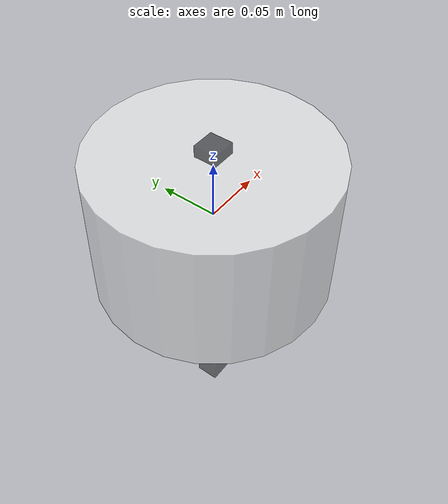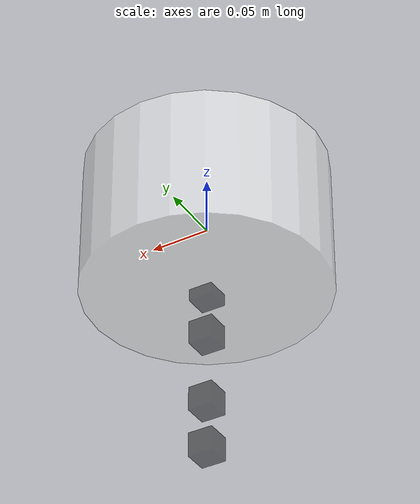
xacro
<?xml version="1.0"?>
<robot xmlns:xacro="http://www.ros.org/wiki/xacro" name="first_robot">
    <xacro:macro name="base_link" params="length radius">
        <link name="base_link">
            <!-- 部件的外观描述 -->
            <visual>
                <!-- 沿着自己几何中心的偏移和旋转量 -->
                <origin xyz="0.0 0.0 0.0" rpy="0.0 0.0 0.0"/>
                <!-- 几何形状 -->
                <geometry>
                    <!-- 圆柱体 radius 半径 0.10m 高度 length 0.12m -->
                    <cylinder radius="${radius}" length="${length}"/>
                </geometry>
                <!-- 材质颜色 -->
                <material name = "white">
                    <color rgba="1.0 1.0 1.0 0.5"/>
                </material>
            </visual>
        </link>
    </xacro:macro>

    <xacro:macro name="IMU_link" params="imu_name xyz">
        <link name="${imu_name}_link">
            <!-- 部件的外观描述 -->
            <visual>
                <!-- 沿着自己几何中心的偏移和旋转量 -->
                <origin xyz="${xyz}" rpy="0.0 0.0 0.0"/>
                <!-- 几何形状 -->
                <geometry>
                    <box size="0.02 0.02 0.02"/>
                </geometry>
                <!-- 材质颜色 -->
                <material name = "black">
                    <color rgba="0.0 0.0 0.0 0.5"/>
                </material>
            </visual>
        </link>

        <!-- 机器人的关节，用于组合机器人的部件 -->
        <joint name="${imu_name}_joint" type="fixed">
            <parent link="base_link"/>
            <child link="${imu_name}_link"/>
            <origin xyz="${xyz}" rpy="0.0 0.0 0.0"/>
        </joint>
    </xacro:macro>

    <xacro:base_link length="0.12" radius="0.1"/>
    <xacro:IMU_link imu_name="imu_up" xyz="0.0 0.0 0.03"/>
    <xacro:IMU_link imu_name="imu_down" xyz="0.0 0.0 -0.03"/>
    <xacro:IMU_link imu_name="imu_down1" xyz="0.0 0.0 -0.03"/>
    <xacro:IMU_link imu_name="imu_down2" xyz="0.0 0.0 -0.05"/>
    <xacro:IMU_link imu_name="imu_down3" xyz="0.0 0.0 -0.08"/>
    <xacro:IMU_link imu_name="imu_down4" xyz="0.0 0.0 -0.10"/>

</robot>
